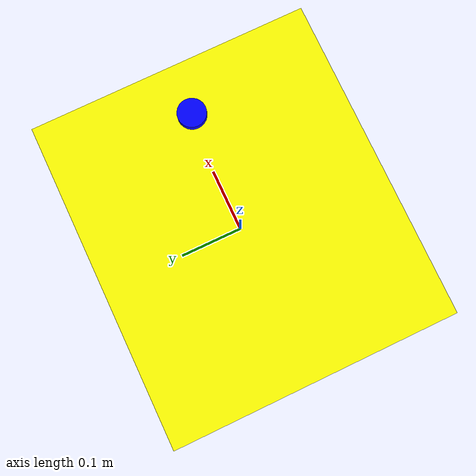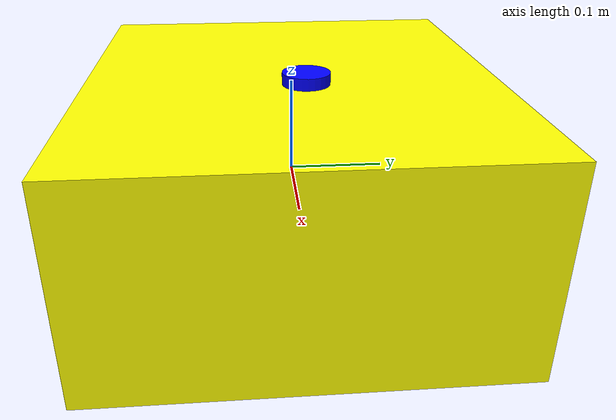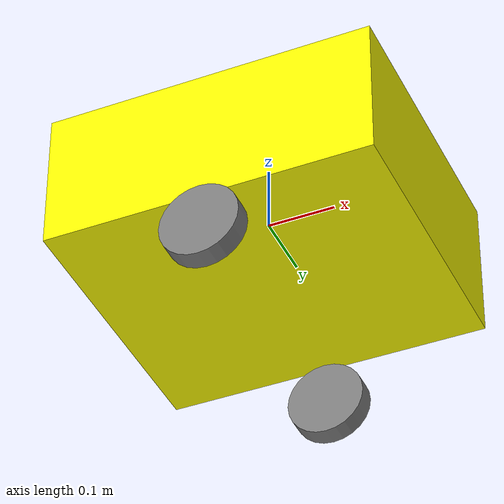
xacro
<?xml version="1.0"?>
<robot xmlns:xacro="http://ros.org/wiki/xacro" name="my_robot">

  <!-- 기본 파라미터 -->
  <xacro:property name="wheel_radius" value="0.0575"/>
  <xacro:property name="wheel_width" value="0.03"/>
  <xacro:property name="wheel_separation" value="0.426"/>
  <xacro:property name="body_length" value="0.48"/>
  <xacro:property name="body_width" value="0.42"/>
  <xacro:property name="body_height" value="0.215"/>

  <!-- base_link -->
  <link name="base_link">
    <visual>
      <geometry>
        <box size="${body_length} ${body_width} ${body_height}"/>
      </geometry>
      <material name="yellow">
        <color rgba="1 1 0 1"/>
      </material>
    </visual>
    <collision>
      <geometry>
        <box size="${body_length} ${body_width} ${body_height}"/>
      </geometry>
    </collision>
    <inertial>
      <mass value="10"/>
      <inertia ixx="0.1" ixy="0.0" ixz="0.0" iyy="0.1" iyz="0.0" izz="0.1"/>
    </inertial>
  </link>

  <!-- 왼쪽 바퀴 -->
  <link name="left_wheel_link">
    <visual>
      <origin rpy="1.5708 0 0"/>
      <geometry>
        <cylinder radius="${wheel_radius}" length="${wheel_width}"/>
      </geometry>
      <material name="gray">
        <color rgba="0.5 0.5 0.5 1"/>
      </material>
    </visual>
    <collision>
      <origin rpy="1.5708 0 0"/>
      <geometry>
        <cylinder radius="${wheel_radius}" length="${wheel_width}"/>
      </geometry>
    </collision>
    <inertial>
      <mass value="1.0"/>
      <inertia ixx="0.001" ixy="0.0" ixz="0.0" iyy="0.001" iyz="0.0" izz="0.001"/>
    </inertial>
  </link>

  <joint name="left_wheel_joint" type="continuous">
    <parent link="base_link"/>
    <child link="left_wheel_link"/>
    <origin xyz="0 ${wheel_separation/2} -${body_height/2 + wheel_radius}" rpy="0 0 0"/>
    <axis xyz="0 1 0"/>
  </joint>

  <!-- 오른쪽 바퀴 -->
  <link name="right_wheel_link">
    <visual>
      <origin rpy="1.5708 0 0"/>
      <geometry>
        <cylinder radius="${wheel_radius}" length="${wheel_width}"/>
      </geometry>
      <material name="gray">
        <color rgba="0.5 0.5 0.5 1"/>
      </material>
    </visual>
    <collision>
      <origin rpy="1.5708 0 0"/>
      <geometry>
        <cylinder radius="${wheel_radius}" length="${wheel_width}"/>
      </geometry>
    </collision>
    <inertial>
      <mass value="1.0"/>
      <inertia ixx="0.001" ixy="0.0" ixz="0.0" iyy="0.001" iyz="0.0" izz="0.001"/>
    </inertial>
  </link>

  <joint name="right_wheel_joint" type="continuous">
    <parent link="base_link"/>
    <child link="right_wheel_link"/>
    <origin xyz="0 -${wheel_separation/2} -${body_height/2 + wheel_radius}" rpy="0 0 0"/>
    <axis xyz="0 1 0"/>
  </joint>

  <!-- 캐스터 바퀴 (optional) -->
  <link name="caster_wheel_link">
    <visual>
      <geometry>
        <sphere radius="0.03"/>
      </geometry>
      <material name="gray">
        <color rgba="0.5 0.5 0.5 1"/>
      </material>
    </visual>
  </link>

  <joint name="caster_joint" type="fixed">
    <parent link="base_link"/>
    <child link="caster_wheel_link"/>
    <origin xyz="-0.15 0 -0.05" rpy="0 0 0"/>
  </joint>

  <!-- LiDAR -->
  <link name="laser_frame">
    <visual>
      <geometry>
        <cylinder radius="0.02" length="0.01"/>
      </geometry>
      <material name="blue">
        <color rgba="0 0 1 1"/>
      </material>
    </visual>
  </link>

  <joint name="laser_joint" type="fixed">
    <parent link="base_link"/>
    <child link="laser_frame"/>
    <origin xyz="0.15 0 0.15" rpy="0 0 0"/>
  </joint>

  <!-- ros2_control interface 선언 -->
  <ros2_control name="MyRobotHardware" type="system">
    <hardware>
      <plugin>gz_ros2_control/GazeboSimSystem</plugin>
    </hardware>
    <joint name="left_wheel_joint">
      <command_interface name="velocity"/>
      <state_interface name="velocity"/>
      <state_interface name="position"/>
    </joint>
    <joint name="right_wheel_joint">
      <command_interface name="velocity"/>
      <state_interface name="velocity"/>
      <state_interface name="position"/>
    </joint>
  </ros2_control>

  <!-- transmission 선언 -->
  <transmission name="left_wheel_trans">
    <type>transmission_interface/SimpleTransmission</type>
    <joint name="left_wheel_joint">
      <hardwareInterface>hardware_interface/VelocityJointInterface</hardwareInterface>
    </joint>
    <actuator name="left_motor">
      <mechanicalReduction>1</mechanicalReduction>
    </actuator>
  </transmission>

  <transmission name="right_wheel_trans">
    <type>transmission_interface/SimpleTransmission</type>
    <joint name="right_wheel_joint">
      <hardwareInterface>hardware_interface/VelocityJointInterface</hardwareInterface>
    </joint>
    <actuator name="right_motor">
      <mechanicalReduction>1</mechanicalReduction>
    </actuator>
  </transmission>

  <!-- Gazebo 플러그인 삽입 -->
  <gazebo>
    <plugin filename="libgz_ros2_control-system.so" name="gz_ros2_control::GazeboSimROS2ControlPlugin">
      <parameters>/home/bitbyte08/Echo/slam_tb_ws/src/echo_slam_encoder_tf/config/diff_drive_controller.yaml</parameters>
    </plugin>
  </gazebo>

</robot>
